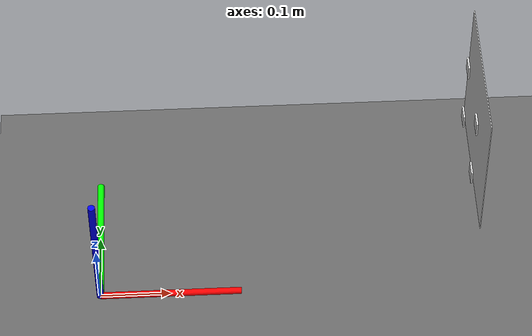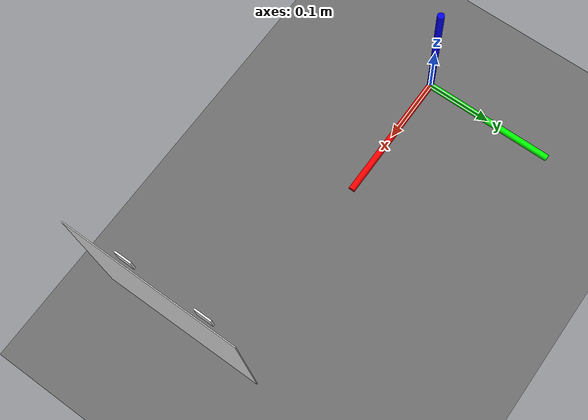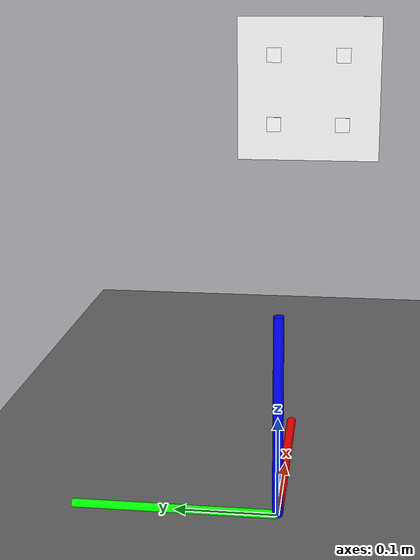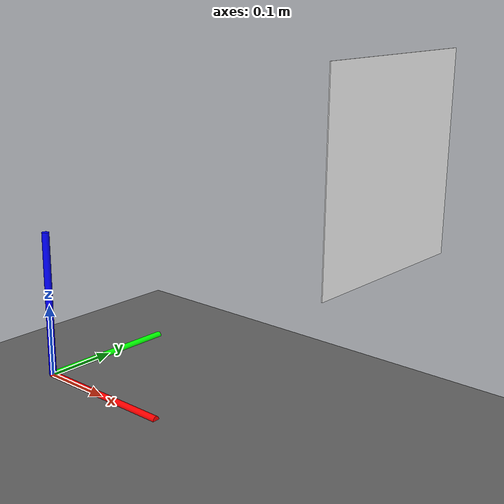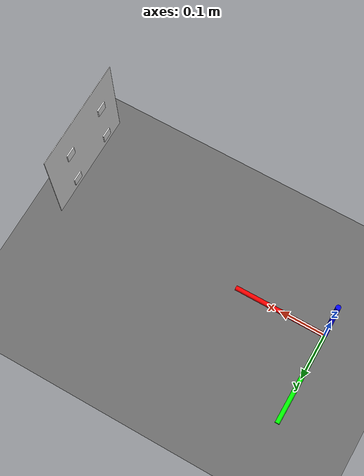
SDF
<?xml version="1.0"?>
<sdf version="1.8">
  <world name="visual_servoing_world">

    <!-- Physics settings -->
    <physics name="default_physics" default="true" type="ode">
      <max_step_size>0.001</max_step_size>
      <real_time_factor>1.0</real_time_factor>
      <real_time_update_rate>1000</real_time_update_rate>
      <ode>
        <solver>
          <type>quick</type>
          <iters>50</iters>
          <sor>1.3</sor>
        </solver>
      </ode>
    </physics>

    <!-- Scene settings with bright lighting for ArUco detection -->
    <scene>
      <ambient>1.0 1.0 1.0 1.0</ambient>
      <background>0.8 0.8 0.8 1.0</background>
      <shadows>false</shadows>
      <grid>true</grid>
    </scene>

    <!-- Strong directional light for good ArUco visibility -->
    <light type="directional" name="sun">
      <cast_shadows>false</cast_shadows>
      <pose>0 0 10 0 0 0</pose>
      <diffuse>1.0 1.0 1.0 1</diffuse>
      <specular>0.3 0.3 0.3 1</specular>
      <attenuation>
        <range>1000</range>
        <constant>0.9</constant>
        <linear>0.01</linear>
        <quadratic>0.001</quadratic>
      </attenuation>
      <direction>0 0 -1</direction>
    </light>

    <!-- Additional fill light -->
    <light name="fill_light" type="directional">
      <pose>2 2 5 0 0 0</pose>
      <diffuse>0.8 0.8 0.8 1</diffuse>
      <specular>0.2 0.2 0.2 1</specular>
      <direction>-0.5 -0.5 -1</direction>
      <cast_shadows>false</cast_shadows>
    </light>

    <!-- Ground plane -->
    <model name="ground_plane">
      <static>true</static>
      <link name="link">
        <collision name="collision">
          <geometry>
            <plane>
              <normal>0 0 1</normal>
              <size>10 10</size>
            </plane>
          </geometry>
        </collision>
        <visual name="visual">
          <geometry>
            <plane>
              <normal>0 0 1</normal>
              <size>10 10</size>
            </plane>
          </geometry>
          <material>
            <ambient>0.4 0.4 0.4 1</ambient>
            <diffuse>0.4 0.4 0.4 1</diffuse>
          </material>
        </visual>
      </link>
    </model>

    <!-- 4 ArUco Markers on drawing surface (120mm x 120mm grid) -->
    <!-- Board: 200x200mm at X=0.5 (center). Markers rotated to face drone (-X) -->
    <!-- Original markers face +/- Y natively. To face -X, rotate yaw by 90 deg (1.5708) -->

    <!-- Marker 0 - Top Left -->
    <include>
      <uri>model://aruco_marker_0</uri>
      <name>marker_0</name>
      <pose>0.5 0.048 0.400 0 0 1.5708</pose>
    </include>

    <!-- Marker 1 - Top Right -->
    <include>
      <uri>model://aruco_marker_1</uri>
      <name>marker_1</name>
      <pose>0.5 -0.048 0.400 0 0 1.5708</pose>
    </include>

    <!-- Marker 2 - Bottom Right -->
    <include>
      <uri>model://aruco_marker_2</uri>
      <name>marker_2</name>
      <pose>0.5 -0.048 0.304 0 0 1.5708</pose>
    </include>

    <!-- Marker 3 - Bottom Left -->
    <include>
      <uri>model://aruco_marker_3</uri>
      <name>marker_3</name>
      <pose>0.5 0.048 0.304 0 0 1.5708</pose>
    </include>

    <!-- Drawing Surface Board - Behind markers as background -->
    <model name="drawing_surface">
      <static>true</static>
      <!-- Placed exactly behind markers X=0.51 -> slightly further away to not clip -->
      <pose>0.51 0.0 0.352 1.5708 0 1.5708</pose>
      <link name="surface_link">
        <visual name="surface_visual">
          <geometry>
            <box>
              <size>0.20 0.20 0.001</size>
            </box>
          </geometry>
          <material>
            <ambient>0.98 0.98 0.98 1</ambient>
            <diffuse>0.98 0.98 0.98 1</diffuse>
            <specular>0.05 0.05 0.05 1</specular>
          </material>
        </visual>
      </link>
    </model>

    <!-- World coordinate frame visualization -->
    <model name="world_frame">
      <static>true</static>
      <pose>0 0 0 0 0 0</pose>

      <!-- X axis (Red) -->
      <link name="x_axis">
        <pose>0.1 0 0 0 1.5708 0</pose>
        <visual name="x_visual">
          <geometry>
            <cylinder>
              <radius>0.005</radius>
              <length>0.2</length>
            </cylinder>
          </geometry>
          <material>
            <ambient>1 0 0 1</ambient>
            <diffuse>1 0 0 1</diffuse>
          </material>
        </visual>
      </link>

      <!-- Y axis (Green) -->
      <link name="y_axis">
        <pose>0 0.1 0 1.5708 0 0</pose>
        <visual name="y_visual">
          <geometry>
            <cylinder>
              <radius>0.005</radius>
              <length>0.2</length>
            </cylinder>
          </geometry>
          <material>
            <ambient>0 1 0 1</ambient>
            <diffuse>0 1 0 1</diffuse>
          </material>
        </visual>
      </link>

      <!-- Z axis (Blue) -->
      <link name="z_axis">
        <pose>0 0 0.1 0 0 0</pose>
        <visual name="z_visual">
          <geometry>
            <cylinder>
              <radius>0.005</radius>
              <length>0.2</length>
            </cylinder>
          </geometry>
          <material>
            <ambient>0 0 1 1</ambient>
            <diffuse>0 0 1 1</diffuse>
          </material>
        </visual>
      </link>
    </model>

    <!-- GUI camera position for good view -->
    <gui fullscreen='false'>
      <camera name='user_camera'>
        <!-- Side view to see robot and board -->
        <pose>0.8 -0.3 0.4 0 0.3 2.0</pose>
        <view_controller>orbit</view_controller>
        <projection_type>perspective</projection_type>
      </camera>
    </gui>

  </world>
</sdf>

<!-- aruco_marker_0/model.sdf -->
<sdf version="1.8">
  <model name="aruco_marker_0">
    <static>true</static>
    <link name="marker_link">
      <visual name="marker_visual">
        <geometry>
          <box>
            <size>0.020 0.002 0.020</size>
          </box>
        </geometry>
        <material>
          <diffuse>1 1 1 1</diffuse>
          <specular>0.1 0.1 0.1 1</specular>
          <pbr>
            <metal>
              <albedo_map>model://aruco_marker_0/materials/textures/marker_0.png</albedo_map>
            </metal>
          </pbr>
        </material>
      </visual>
      <collision name="marker_collision">
        <geometry>
          <box>
            <size>0.020 0.002 0.020</size>
          </box>
        </geometry>
      </collision>
    </link>
  </model>
</sdf>

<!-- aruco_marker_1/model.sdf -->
<sdf version="1.8">
  <model name="aruco_marker_1">
    <static>true</static>
    <link name="marker_link">
      <visual name="marker_visual">
        <geometry>
          <box><size>0.020 0.002 0.020</size></box>
        </geometry>
        <material>
          <diffuse>1 1 1 1</diffuse>
          <specular>0.1 0.1 0.1 1</specular>
          <pbr>
            <metal>
              <albedo_map>model://aruco_marker_1/materials/textures/marker_1.png</albedo_map>
            </metal>
          </pbr>
        </material>
      </visual>
      <collision name="marker_collision">
        <geometry><box><size>0.020 0.002 0.020</size></box></geometry>
      </collision>
    </link>
  </model>
</sdf>

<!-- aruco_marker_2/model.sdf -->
<sdf version="1.8">
  <model name="aruco_marker_2">
    <static>true</static>
    <link name="marker_link">
      <visual name="marker_visual">
        <geometry>
          <box><size>0.020 0.002 0.020</size></box>
        </geometry>
        <material>
          <diffuse>1 1 1 1</diffuse>
          <specular>0.1 0.1 0.1 1</specular>
          <pbr>
            <metal>
              <albedo_map>model://aruco_marker_2/materials/textures/marker_2.png</albedo_map>
            </metal>
          </pbr>
        </material>
      </visual>
      <collision name="marker_collision">
        <geometry><box><size>0.020 0.002 0.020</size></box></geometry>
      </collision>
    </link>
  </model>
</sdf>

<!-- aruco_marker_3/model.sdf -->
<sdf version="1.8">
  <model name="aruco_marker_3">
    <static>true</static>
    <link name="marker_link">
      <visual name="marker_visual">
        <geometry>
          <box><size>0.020 0.002 0.020</size></box>
        </geometry>
        <material>
          <diffuse>1 1 1 1</diffuse>
          <specular>0.1 0.1 0.1 1</specular>
          <pbr>
            <metal>
              <albedo_map>model://aruco_marker_3/materials/textures/marker_3.png</albedo_map>
            </metal>
          </pbr>
        </material>
      </visual>
      <collision name="marker_collision">
        <geometry><box><size>0.020 0.002 0.020</size></box></geometry>
      </collision>
    </link>
  </model>
</sdf>
